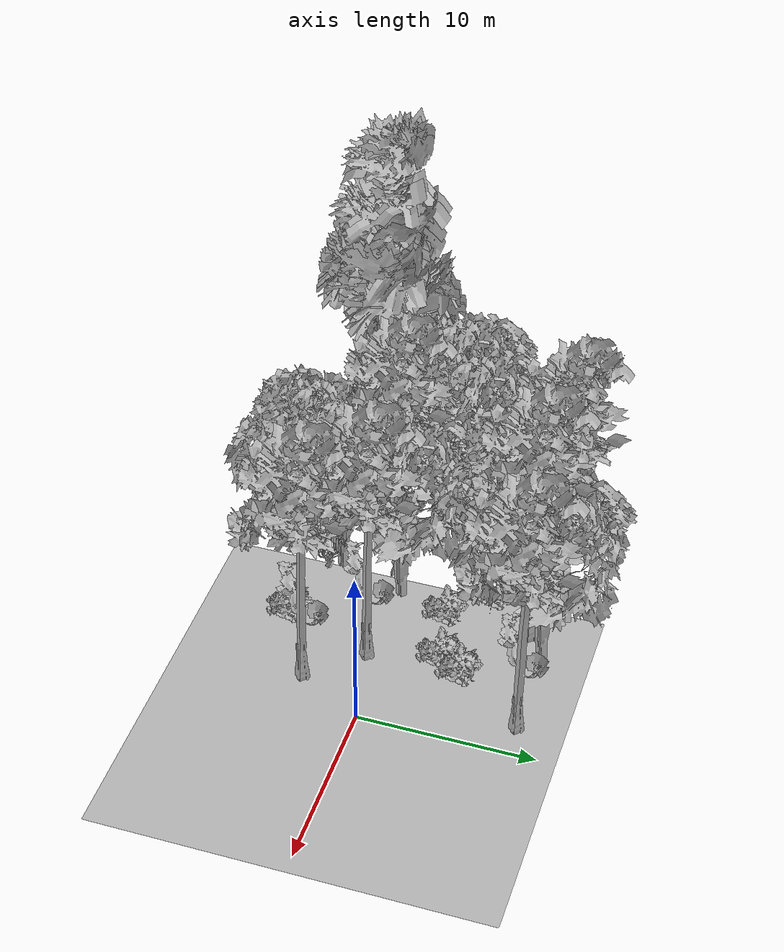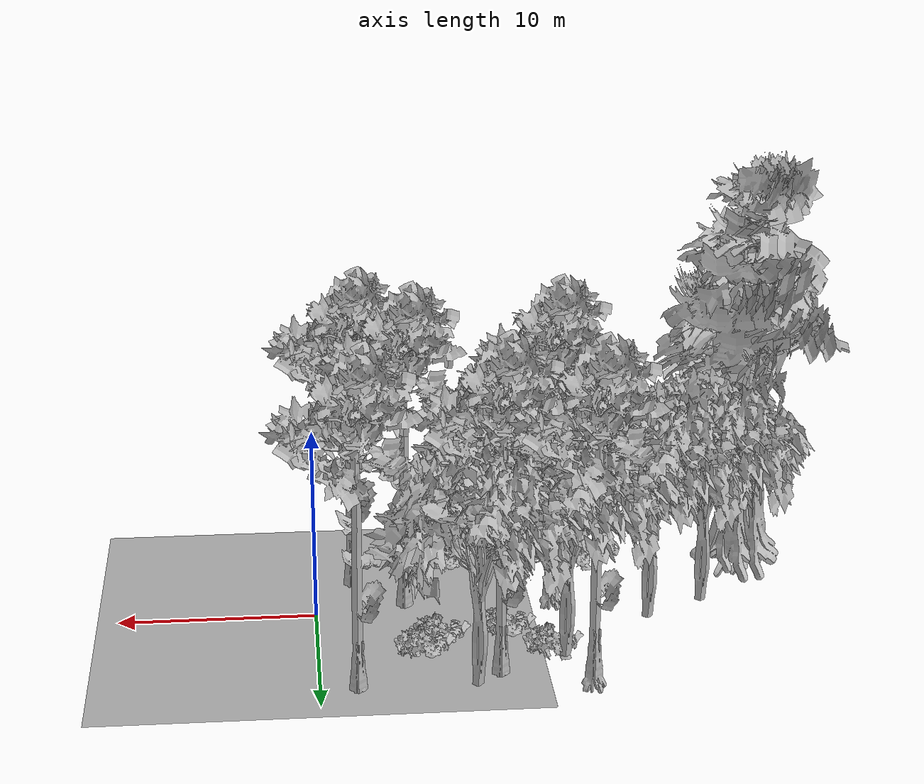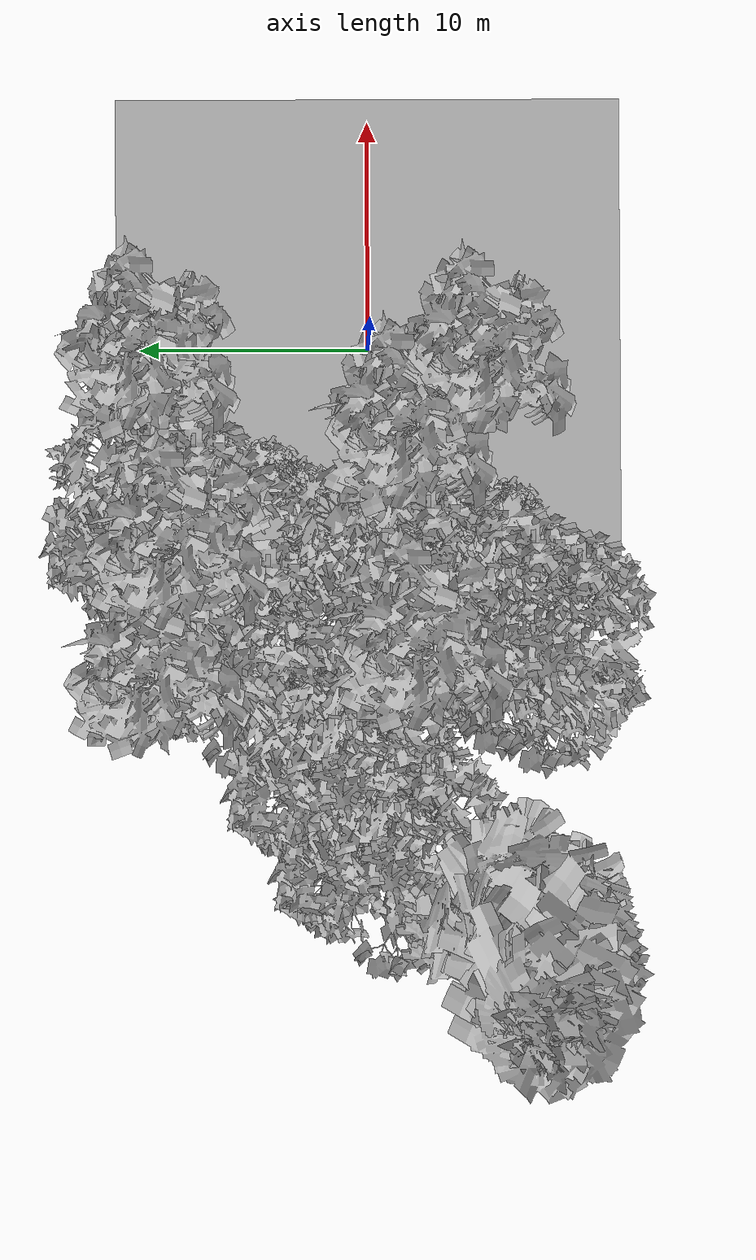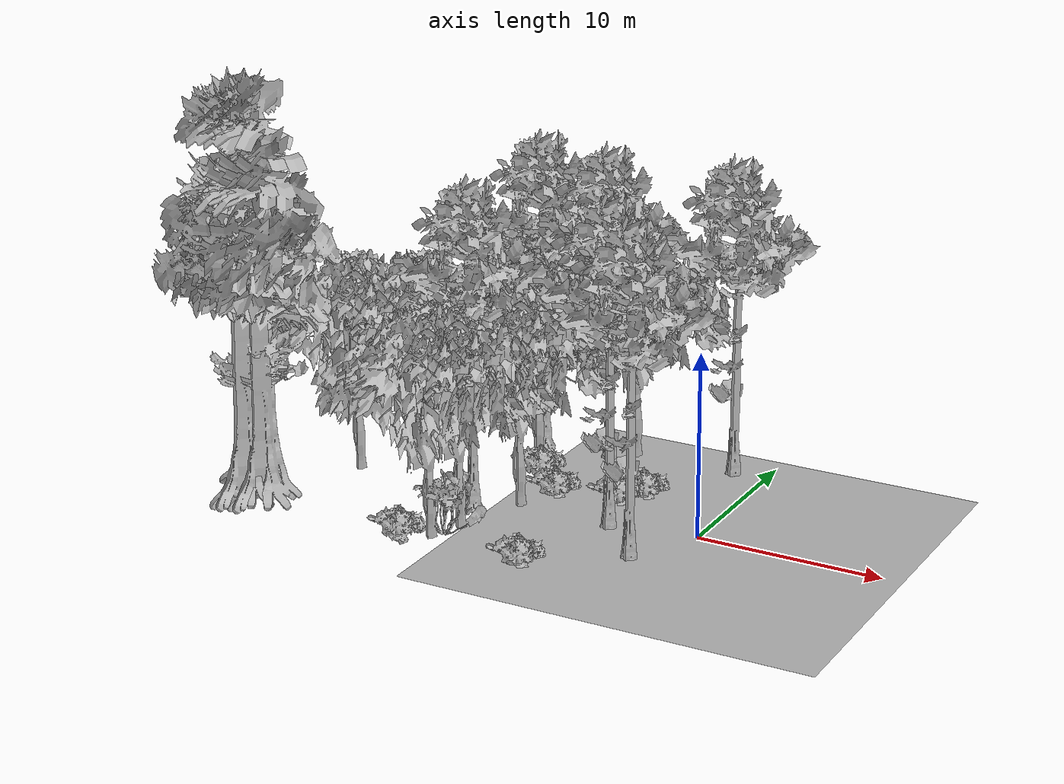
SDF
<sdf version="1.7">
 <world name="default">
  <model name="ground_plane">
   <static>1</static>
   <link name="link">
    <collision name="collision">
     <geometry><plane><normal>0 0 1</normal><size>100 100</size></plane></geometry>
     <surface><contact><ode><min_depth>0.01</min_depth><max_vel>0</max_vel></ode></contact></surface>
    </collision>
    <visual name="grass">
     <cast_shadows>0</cast_shadows>
     <geometry>
      <mesh>
       <scale>0.41000000000000003 0.41000000000000003 0.1</scale>
       <uri>file://grass_plane/meshes/grass_plane.dae</uri>
      </mesh>
     </geometry>
    </visual>
   </link>
  </model>
  <model name="Tree 23">
   <static>1</static>
   <pose>-12.25507892687439 -1.445269428864627 0 1.57079 -0 0</pose>
   <link name="link">
    <collision name="collision">
     <geometry><mesh><scale>5 5 5</scale><uri>model://tree_9/meshes/tree_9.obj</uri></mesh></geometry>
    </collision>
    <visual name="visual">
     <geometry><mesh><scale>5 5 5</scale><uri>model://tree_9/meshes/tree_9.obj</uri></mesh></geometry>
    </visual>
   </link>
  </model>
  <model name="Tree 65">
   <static>1</static>
   <pose>-17.00998567451305 1.4229348751580773 0 1.57079 -0 0</pose>
   <link name="link">
    <collision name="collision">
     <geometry><mesh><scale>5 5 5</scale><uri>model://tree_2/meshes/tree_2.obj</uri></mesh></geometry>
    </collision>
    <visual name="visual">
     <geometry><mesh><scale>5 5 5</scale><uri>model://tree_2/meshes/tree_2.obj</uri></mesh></geometry>
    </visual>
   </link>
  </model>
  <model name="Tree 74">
   <static>1</static>
   <pose>-12.274726762964114 5.470270894441896 0 1.57079 -0 0</pose>
   <link name="link">
    <collision name="collision">
     <geometry><mesh><scale>5 5 5</scale><uri>model://tree_2/meshes/tree_2.obj</uri></mesh></geometry>
    </collision>
    <visual name="visual">
     <geometry><mesh><scale>5 5 5</scale><uri>model://tree_2/meshes/tree_2.obj</uri></mesh></geometry>
    </visual>
   </link>
  </model>
  <model name="Tree 79">
   <static>1</static>
   <pose>-8.75081149402024 7.3354006164904035 0 1.57079 -0 0</pose>
   <link name="link">
    <collision name="collision">
     <geometry><mesh><scale>5 5 5</scale><uri>model://tree_9/meshes/tree_9.obj</uri></mesh></geometry>
    </collision>
    <visual name="visual">
     <geometry><mesh><scale>5 5 5</scale><uri>model://tree_9/meshes/tree_9.obj</uri></mesh></geometry>
    </visual>
   </link>
  </model>
  <model name="Tree 127">
   <static>1</static>
   <pose>-10.060449470221165 -0.5923627758223731 0 1.57079 -0 0</pose>
   <link name="link">
    <collision name="collision">
     <geometry><mesh><scale>5 5 5</scale><uri>model://tree_2/meshes/tree_2.obj</uri></mesh></geometry>
    </collision>
    <visual name="visual">
     <geometry><mesh><scale>5 5 5</scale><uri>model://tree_2/meshes/tree_2.obj</uri></mesh></geometry>
    </visual>
   </link>
  </model>
  <model name="Tree 290">
   <static>1</static>
   <pose>-1.8208264783531476 8.430859979928897 0 1.57079 -0 0</pose>
   <link name="link">
    <collision name="collision">
     <geometry><mesh><scale>5 5 5</scale><uri>model://tree_9/meshes/tree_9.obj</uri></mesh></geometry>
    </collision>
    <visual name="visual">
     <geometry><mesh><scale>5 5 5</scale><uri>model://tree_9/meshes/tree_9.obj</uri></mesh></geometry>
    </visual>
   </link>
  </model>
  <model name="Tree 310">
   <static>1</static>
   <pose>-20.06428762187378 -0.3637669211282386 0 1.57079 -0 0</pose>
   <link name="link">
    <collision name="collision">
     <geometry><mesh><scale>5 5 5</scale><uri>model://tree_2/meshes/tree_2.obj</uri></mesh></geometry>
    </collision>
    <visual name="visual">
     <geometry><mesh><scale>5 5 5</scale><uri>model://tree_2/meshes/tree_2.obj</uri></mesh></geometry>
    </visual>
   </link>
  </model>
  <model name="Tree 328">
   <static>1</static>
   <pose>-23.534547379769663 -5.800079219180141 0 1.57079 -0 0</pose>
   <link name="link">
    <collision name="collision">
     <geometry><mesh><scale>5 5 5</scale><uri>model://tree_4/meshes/tree_4.obj</uri></mesh></geometry>
    </collision>
    <visual name="visual">
     <geometry><mesh><scale>5 5 5</scale><uri>model://tree_4/meshes/tree_4.obj</uri></mesh></geometry>
    </visual>
   </link>
  </model>
  <model name="Tree 362">
   <static>1</static>
   <pose>-7.704652158869997 8.272122872264084 0 1.57079 -0 0</pose>
   <link name="link">
    <collision name="collision">
     <geometry><mesh><scale>5 5 5</scale><uri>model://tree_2/meshes/tree_2.obj</uri></mesh></geometry>
    </collision>
    <visual name="visual">
     <geometry><mesh><scale>5 5 5</scale><uri>model://tree_2/meshes/tree_2.obj</uri></mesh></geometry>
    </visual>
   </link>
  </model>
  <model name="Tree 416">
   <static>1</static>
   <pose>-1.9847843516070753 -3.73322131806173 0 1.57079 -0 0</pose>
   <link name="link">
    <collision name="collision">
     <geometry><mesh><scale>5 5 5</scale><uri>model://tree_9/meshes/tree_9.obj</uri></mesh></geometry>
    </collision>
    <visual name="visual">
     <geometry><mesh><scale>5 5 5</scale><uri>model://tree_9/meshes/tree_9.obj</uri></mesh></geometry>
    </visual>
   </link>
  </model>
  <model name="Tree 453">
   <static>1</static>
   <pose>-22.620034963460157 -5.587609622121192 0 1.57079 -0 0</pose>
   <link name="link">
    <collision name="collision">
     <geometry><mesh><scale>5 5 5</scale><uri>model://tree_4/meshes/tree_4.obj</uri></mesh></geometry>
    </collision>
    <visual name="visual">
     <geometry><mesh><scale>5 5 5</scale><uri>model://tree_4/meshes/tree_4.obj</uri></mesh></geometry>
    </visual>
   </link>
  </model>
  <model name="Tree 457">
   <static>1</static>
   <pose>-13.181504109494412 8.10868878890242 0 1.57079 -0 0</pose>
   <link name="link">
    <collision name="collision">
     <geometry><mesh><scale>5 5 5</scale><uri>model://tree_9/meshes/tree_9.obj</uri></mesh></geometry>
    </collision>
    <visual name="visual">
     <geometry><mesh><scale>5 5 5</scale><uri>model://tree_9/meshes/tree_9.obj</uri></mesh></geometry>
    </visual>
   </link>
  </model>
  <model name="Tree 475">
   <static>1</static>
   <pose>-11.381605601961091 -4.529378649232839 0 1.57079 -0 0</pose>
   <link name="link">
    <collision name="collision">
     <geometry><mesh><scale>5 5 5</scale><uri>model://tree_2/meshes/tree_2.obj</uri></mesh></geometry>
    </collision>
    <visual name="visual">
     <geometry><mesh><scale>5 5 5</scale><uri>model://tree_2/meshes/tree_2.obj</uri></mesh></geometry>
    </visual>
   </link>
  </model>
  <model name="Tree 476">
   <static>1</static>
   <pose>-4.585045257593372 -0.8810089983220877 0 1.57079 -0 0</pose>
   <link name="link">
    <collision name="collision">
     <geometry><mesh><scale>5 5 5</scale><uri>model://tree_9/meshes/tree_9.obj</uri></mesh></geometry>
    </collision>
    <visual name="visual">
     <geometry><mesh><scale>5 5 5</scale><uri>model://tree_9/meshes/tree_9.obj</uri></mesh></geometry>
    </visual>
   </link>
  </model>
  <model name="Tree 483">
   <static>1</static>
   <pose>-12.104086626066824 -6.2770510932477634 0 1.57079 -0 0</pose>
   <link name="link">
    <collision name="collision">
     <geometry><mesh><scale>5 5 5</scale><uri>model://tree_2/meshes/tree_2.obj</uri></mesh></geometry>
    </collision>
    <visual name="visual">
     <geometry><mesh><scale>5 5 5</scale><uri>model://tree_2/meshes/tree_2.obj</uri></mesh></geometry>
    </visual>
   </link>
  </model>
  <model name="Bush 45">
   <static>1</static>
   <pose>-11.569167357246421 4.4705722926666525 0 1.57079 -0 0</pose>
   <link name="link">
    <collision name="collision">
     <geometry><mesh><scale>2 2 2</scale><uri>model://bush_2/meshes/bush_2.obj</uri></mesh></geometry>
    </collision>
    <visual name="visual">
     <geometry><mesh><scale>5 5 5</scale><uri>model://bush_2/meshes/bush_2.obj</uri></mesh></geometry>
    </visual>
   </link>
  </model>
  <model name="Bush 51">
   <static>1</static>
   <pose>-9.4440851320157 2.1893487652741896 0 1.57079 -0 0</pose>
   <link name="link">
    <collision name="collision">
     <geometry><mesh><scale>2 2 2</scale><uri>model://bush_2/meshes/bush_2.obj</uri></mesh></geometry>
    </collision>
    <visual name="visual">
     <geometry><mesh><scale>5 5 5</scale><uri>model://bush_2/meshes/bush_2.obj</uri></mesh></geometry>
    </visual>
   </link>
  </model>
  <model name="Bush 86">
   <static>1</static>
   <pose>-5.199967638606772 4.225804361648386 0 1.57079 -0 0</pose>
   <link name="link">
    <collision name="collision">
     <geometry><mesh><scale>2 2 2</scale><uri>model://bush_2/meshes/bush_2.obj</uri></mesh></geometry>
    </collision>
    <visual name="visual">
     <geometry><mesh><scale>5 5 5</scale><uri>model://bush_2/meshes/bush_2.obj</uri></mesh></geometry>
    </visual>
   </link>
  </model>
  <model name="Bush 91">
   <static>1</static>
   <pose>-6.061814875128519 2.8766058680419704 0 1.57079 -0 0</pose>
   <link name="link">
    <collision name="collision">
     <geometry><mesh><scale>2 2 2</scale><uri>model://bush_2/meshes/bush_2.obj</uri></mesh></geometry>
    </collision>
    <visual name="visual">
     <geometry><mesh><scale>5 5 5</scale><uri>model://bush_2/meshes/bush_2.obj</uri></mesh></geometry>
    </visual>
   </link>
  </model>
  <model name="Bush 101">
   <static>1</static>
   <pose>-14.06765871277264 -6.157519278199672 0 1.57079 -0 0</pose>
   <link name="link">
    <collision name="collision">
     <geometry><mesh><scale>2 2 2</scale><uri>model://bush_2/meshes/bush_2.obj</uri></mesh></geometry>
    </collision>
    <visual name="visual">
     <geometry><mesh><scale>5 5 5</scale><uri>model://bush_2/meshes/bush_2.obj</uri></mesh></geometry>
    </visual>
   </link>
  </model>
  <model name="Bush 116">
   <static>1</static>
   <pose>-11.572548386343534 -5.598138415465527 0 1.57079 -0 0</pose>
   <link name="link">
    <collision name="collision">
     <geometry><mesh><scale>2 2 2</scale><uri>model://bush_4/meshes/bush_4.obj</uri></mesh></geometry>
    </collision>
    <visual name="visual">
     <geometry><mesh><scale>5 5 5</scale><uri>model://bush_4/meshes/bush_4.obj</uri></mesh></geometry>
    </visual>
   </link>
  </model>
  <model name="Bush 122">
   <static>1</static>
   <pose>-6.99945095226159 -6.280302041744321 0 1.57079 -0 0</pose>
   <link name="link">
    <collision name="collision">
     <geometry><mesh><scale>2 2 2</scale><uri>model://bush_2/meshes/bush_2.obj</uri></mesh></geometry>
    </collision>
    <visual name="visual">
     <geometry><mesh><scale>5 5 5</scale><uri>model://bush_2/meshes/bush_2.obj</uri></mesh></geometry>
    </visual>
   </link>
  </model>
 </world>
</sdf>
